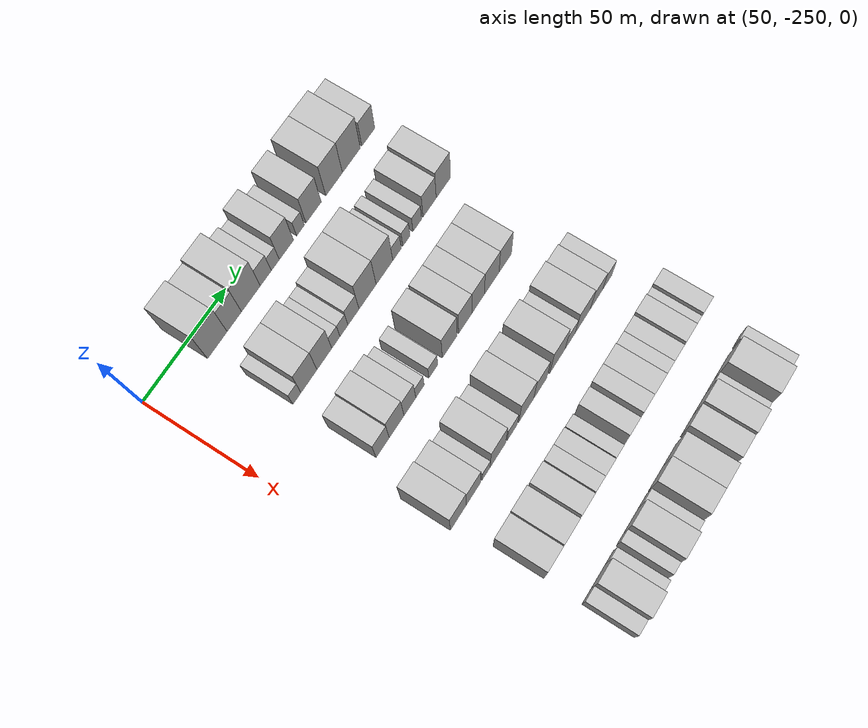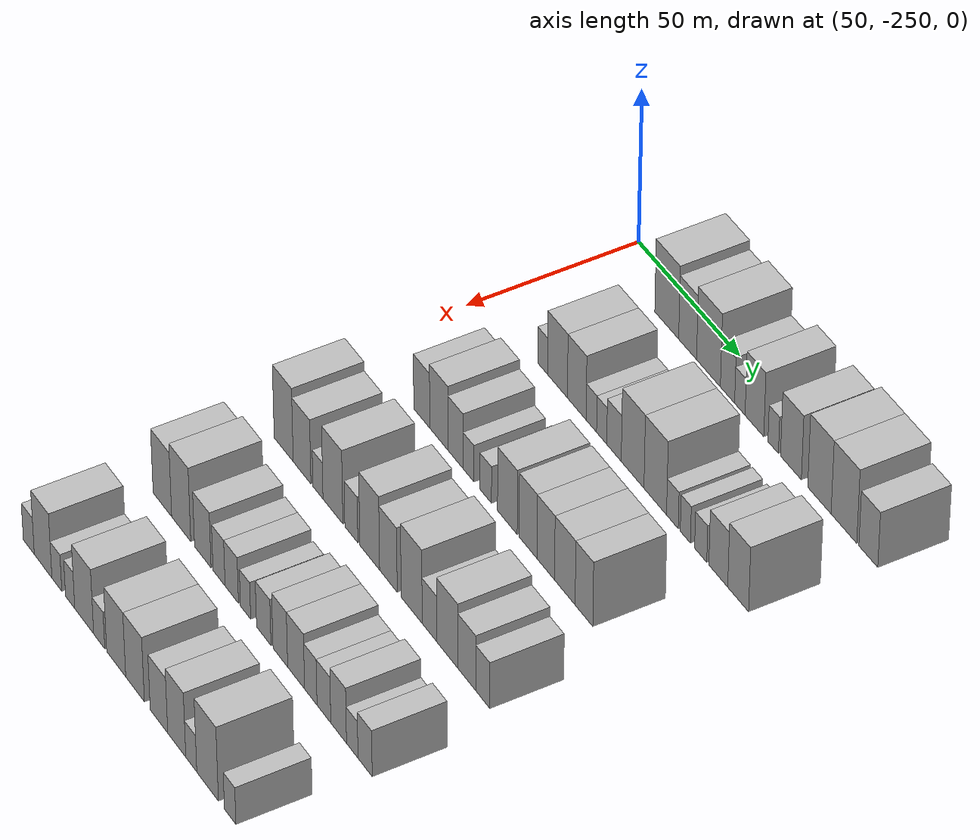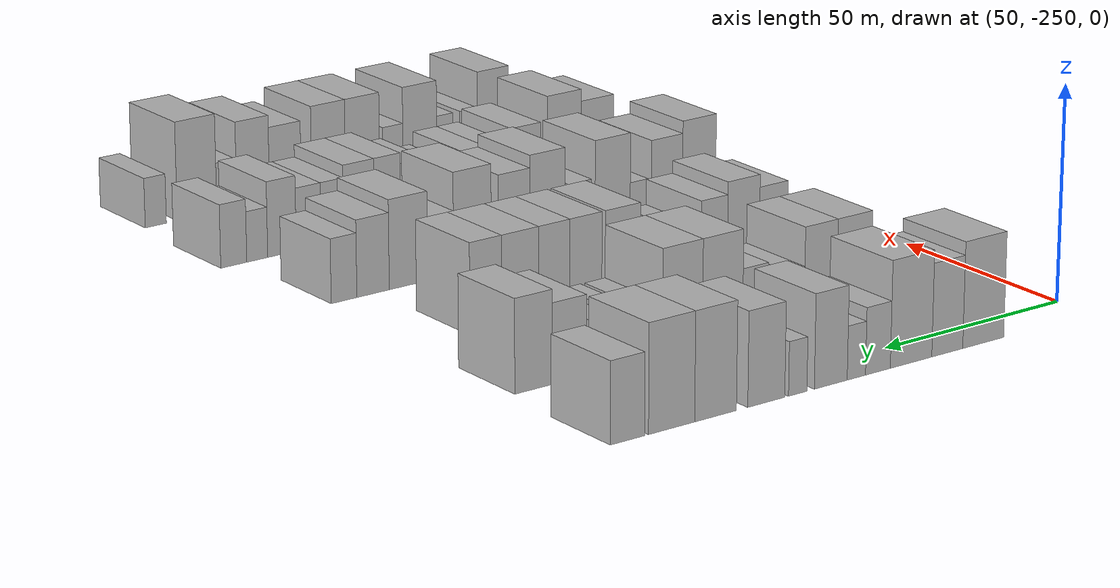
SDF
<sdf version="1.6">
 <world name="default">
  <model name="building_41">
   <static>1</static>
   <pose>50.0000 -219.0202 0 0.000000 0.000000 0.000000</pose>
   <link name="link">
    <pose>0 0 12.00 0 0 0</pose>
    <collision name="collision"><geometry><box><size>20.0000 11.8010 24.0000</size></box></geometry></collision>
    <visual name="visual">
     <cast_shadows>0</cast_shadows>
     <geometry><box><size>20.0000 11.8010 24.0000</size></box></geometry>
     <material>
      <script>
       <uri>model://HANNAS_wall/materials/scripts</uri>
       <uri>model://HANNAS_wall/materials/textures</uri>
       <name>vrc/HANNAS_wall</name>
      </script>
     </material>
    </visual>
   </link>
  </model>
  <model name="building_42">
   <static>1</static>
   <pose>50.0000 -208.7219 0 0.000000 0.000000 0.000000</pose>
   <link name="link">
    <pose>0 0 10.50 0 0 0</pose>
    <collision name="collision"><geometry><box><size>20.0000 8.7955 21.0000</size></box></geometry></collision>
    <visual name="visual">
     <cast_shadows>0</cast_shadows>
     <geometry><box><size>20.0000 8.7955 21.0000</size></box></geometry>
     <material>
      <script>
       <uri>model://HANNAS_wall/materials/scripts</uri>
       <uri>model://HANNAS_wall/materials/textures</uri>
       <name>vrc/HANNAS_wall</name>
      </script>
     </material>
    </visual>
   </link>
  </model>
  <model name="building_43">
   <static>1</static>
   <pose>50.0000 -198.5086 0 0.000000 0.000000 0.000000</pose>
   <link name="link">
    <pose>0 0 12.00 0 0 0</pose>
    <collision name="collision"><geometry><box><size>20.0000 11.6310 24.0000</size></box></geometry></collision>
    <visual name="visual">
     <cast_shadows>0</cast_shadows>
     <geometry><box><size>20.0000 11.6310 24.0000</size></box></geometry>
     <material>
      <script>
       <uri>model://HANNAS_wall/materials/scripts</uri>
       <uri>model://HANNAS_wall/materials/textures</uri>
       <name>vrc/HANNAS_wall</name>
      </script>
     </material>
    </visual>
   </link>
  </model>
  <model name="building_44">
   <static>1</static>
   <pose>50.0000 -189.2512 0 0.000000 0.000000 0.000000</pose>
   <link name="link">
    <pose>0 0 7.50 0 0 0</pose>
    <collision name="collision"><geometry><box><size>20.0000 6.8839 15.0000</size></box></geometry></collision>
    <visual name="visual">
     <cast_shadows>0</cast_shadows>
     <geometry><box><size>20.0000 6.8839 15.0000</size></box></geometry>
     <material>
      <script>
       <uri>model://HANNAS_wall/materials/scripts</uri>
       <uri>model://HANNAS_wall/materials/textures</uri>
       <name>vrc/HANNAS_wall</name>
      </script>
     </material>
    </visual>
   </link>
  </model>
  <model name="building_45">
   <static>1</static>
   <pose>50.0000 -183.2836 0 0.000000 0.000000 0.000000</pose>
   <link name="link">
    <pose>0 0 6.00 0 0 0</pose>
    <collision name="collision"><geometry><box><size>20.0000 5.0514 12.0000</size></box></geometry></collision>
    <visual name="visual">
     <cast_shadows>0</cast_shadows>
     <geometry><box><size>20.0000 5.0514 12.0000</size></box></geometry>
     <material>
      <script>
       <uri>model://HANNAS_wall/materials/scripts</uri>
       <uri>model://HANNAS_wall/materials/textures</uri>
       <name>vrc/HANNAS_wall</name>
      </script>
     </material>
    </visual>
   </link>
  </model>
  <model name="building_46">
   <static>1</static>
   <pose>50.0000 -176.2720 0 0.000000 0.000000 0.000000</pose>
   <link name="link">
    <pose>0 0 10.50 0 0 0</pose>
    <collision name="collision"><geometry><box><size>20.0000 8.9718 21.0000</size></box></geometry></collision>
    <visual name="visual">
     <cast_shadows>0</cast_shadows>
     <geometry><box><size>20.0000 8.9718 21.0000</size></box></geometry>
     <material>
      <script>
       <uri>model://HANNAS_wall/materials/scripts</uri>
       <uri>model://HANNAS_wall/materials/textures</uri>
       <name>vrc/HANNAS_wall</name>
      </script>
     </material>
    </visual>
   </link>
  </model>
  <model name="building_47">
   <static>1</static>
   <pose>50.0000 -167.2965 0 0.000000 0.000000 0.000000</pose>
   <link name="link">
    <pose>0 0 6.00 0 0 0</pose>
    <collision name="collision"><geometry><box><size>20.0000 4.9792 12.0000</size></box></geometry></collision>
    <visual name="visual">
     <cast_shadows>0</cast_shadows>
     <geometry><box><size>20.0000 4.9792 12.0000</size></box></geometry>
     <material>
      <script>
       <uri>model://HANNAS_wall/materials/scripts</uri>
       <uri>model://HANNAS_wall/materials/textures</uri>
       <name>vrc/HANNAS_wall</name>
      </script>
     </material>
    </visual>
   </link>
  </model>
  <model name="building_48">
   <static>1</static>
   <pose>50.0000 -158.8689 0 0.000000 0.000000 0.000000</pose>
   <link name="link">
    <pose>0 0 10.50 0 0 0</pose>
    <collision name="collision"><geometry><box><size>20.0000 9.8760 21.0000</size></box></geometry></collision>
    <visual name="visual">
     <cast_shadows>0</cast_shadows>
     <geometry><box><size>20.0000 9.8760 21.0000</size></box></geometry>
     <material>
      <script>
       <uri>model://HANNAS_wall/materials/scripts</uri>
       <uri>model://HANNAS_wall/materials/textures</uri>
       <name>vrc/HANNAS_wall</name>
      </script>
     </material>
    </visual>
   </link>
  </model>
  <model name="building_49">
   <static>1</static>
   <pose>50.0000 -145.4547 0 0.000000 0.000000 0.000000</pose>
   <link name="link">
    <pose>0 0 12.00 0 0 0</pose>
    <collision name="collision"><geometry><box><size>20.0000 10.9523 24.0000</size></box></geometry></collision>
    <visual name="visual">
     <cast_shadows>0</cast_shadows>
     <geometry><box><size>20.0000 10.9523 24.0000</size></box></geometry>
     <material>
      <script>
       <uri>model://HANNAS_wall/materials/scripts</uri>
       <uri>model://HANNAS_wall/materials/textures</uri>
       <name>vrc/HANNAS_wall</name>
      </script>
     </material>
    </visual>
   </link>
  </model>
  <model name="building_50">
   <static>1</static>
   <pose>50.0000 -134.0115 0 0.000000 0.000000 0.000000</pose>
   <link name="link">
    <pose>0 0 12.00 0 0 0</pose>
    <collision name="collision"><geometry><box><size>20.0000 11.9341 24.0000</size></box></geometry></collision>
    <visual name="visual">
     <cast_shadows>0</cast_shadows>
     <geometry><box><size>20.0000 11.9341 24.0000</size></box></geometry>
     <material>
      <script>
       <uri>model://HANNAS_wall/materials/scripts</uri>
       <uri>model://HANNAS_wall/materials/textures</uri>
       <name>vrc/HANNAS_wall</name>
      </script>
     </material>
    </visual>
   </link>
  </model>
  <model name="building_51">
   <static>1</static>
   <pose>50.0000 -122.6873 0 0.000000 0.000000 0.000000</pose>
   <link name="link">
    <pose>0 0 9.00 0 0 0</pose>
    <collision name="collision"><geometry><box><size>20.0000 8.7145 18.0000</size></box></geometry></collision>
    <visual name="visual">
     <cast_shadows>0</cast_shadows>
     <geometry><box><size>20.0000 8.7145 18.0000</size></box></geometry>
     <material>
      <script>
       <uri>model://HANNAS_wall/materials/scripts</uri>
       <uri>model://HANNAS_wall/materials/textures</uri>
       <name>vrc/HANNAS_wall</name>
      </script>
     </material>
    </visual>
   </link>
  </model>
  <model name="building_169">
   <static>1</static>
   <pose>85.0000 -219.9961 0 0.000000 0.000000 0.000000</pose>
   <link name="link">
    <pose>0 0 6.00 0 0 0</pose>
    <collision name="collision"><geometry><box><size>20.0000 4.9294 12.0000</size></box></geometry></collision>
    <visual name="visual">
     <cast_shadows>0</cast_shadows>
     <geometry><box><size>20.0000 4.9294 12.0000</size></box></geometry>
     <material>
      <script>
       <uri>model://HANNAS_wall/materials/scripts</uri>
       <uri>model://HANNAS_wall/materials/textures</uri>
       <name>vrc/HANNAS_wall</name>
      </script>
     </material>
    </visual>
   </link>
  </model>
  <model name="building_170">
   <static>1</static>
   <pose>85.0000 -212.5803 0 0.000000 0.000000 0.000000</pose>
   <link name="link">
    <pose>0 0 10.50 0 0 0</pose>
    <collision name="collision"><geometry><box><size>20.0000 9.9023 21.0000</size></box></geometry></collision>
    <visual name="visual">
     <cast_shadows>0</cast_shadows>
     <geometry><box><size>20.0000 9.9023 21.0000</size></box></geometry>
     <material>
      <script>
       <uri>model://HANNAS_wall/materials/scripts</uri>
       <uri>model://HANNAS_wall/materials/textures</uri>
       <name>vrc/HANNAS_wall</name>
      </script>
     </material>
    </visual>
   </link>
  </model>
  <model name="building_171">
   <static>1</static>
   <pose>85.0000 -202.9934 0 0.000000 0.000000 0.000000</pose>
   <link name="link">
    <pose>0 0 10.50 0 0 0</pose>
    <collision name="collision"><geometry><box><size>20.0000 9.2715 21.0000</size></box></geometry></collision>
    <visual name="visual">
     <cast_shadows>0</cast_shadows>
     <geometry><box><size>20.0000 9.2715 21.0000</size></box></geometry>
     <material>
      <script>
       <uri>model://HANNAS_wall/materials/scripts</uri>
       <uri>model://HANNAS_wall/materials/textures</uri>
       <name>vrc/HANNAS_wall</name>
      </script>
     </material>
    </visual>
   </link>
  </model>
  <model name="building_172">
   <static>1</static>
   <pose>85.0000 -195.7732 0 0.000000 0.000000 0.000000</pose>
   <link name="link">
    <pose>0 0 6.00 0 0 0</pose>
    <collision name="collision"><geometry><box><size>20.0000 5.1690 12.0000</size></box></geometry></collision>
    <visual name="visual">
     <cast_shadows>0</cast_shadows>
     <geometry><box><size>20.0000 5.1690 12.0000</size></box></geometry>
     <material>
      <script>
       <uri>model://HANNAS_wall/materials/scripts</uri>
       <uri>model://HANNAS_wall/materials/textures</uri>
       <name>vrc/HANNAS_wall</name>
      </script>
     </material>
    </visual>
   </link>
  </model>
  <model name="building_173">
   <static>1</static>
   <pose>85.0000 -190.6806 0 0.000000 0.000000 0.000000</pose>
   <link name="link">
    <pose>0 0 6.00 0 0 0</pose>
    <collision name="collision"><geometry><box><size>20.0000 5.0160 12.0000</size></box></geometry></collision>
    <visual name="visual">
     <cast_shadows>0</cast_shadows>
     <geometry><box><size>20.0000 5.0160 12.0000</size></box></geometry>
     <material>
      <script>
       <uri>model://HANNAS_wall/materials/scripts</uri>
       <uri>model://HANNAS_wall/materials/textures</uri>
       <name>vrc/HANNAS_wall</name>
      </script>
     </material>
    </visual>
   </link>
  </model>
  <model name="building_174">
   <static>1</static>
   <pose>85.0000 -184.6226 0 0.000000 0.000000 0.000000</pose>
   <link name="link">
    <pose>0 0 7.50 0 0 0</pose>
    <collision name="collision"><geometry><box><size>20.0000 7.1000 15.0000</size></box></geometry></collision>
    <visual name="visual">
     <cast_shadows>0</cast_shadows>
     <geometry><box><size>20.0000 7.1000 15.0000</size></box></geometry>
     <material>
      <script>
       <uri>model://HANNAS_wall/materials/scripts</uri>
       <uri>model://HANNAS_wall/materials/textures</uri>
       <name>vrc/HANNAS_wall</name>
      </script>
     </material>
    </visual>
   </link>
  </model>
  <model name="building_175">
   <static>1</static>
   <pose>85.0000 -175.5420 0 0.000000 0.000000 0.000000</pose>
   <link name="link">
    <pose>0 0 12.00 0 0 0</pose>
    <collision name="collision"><geometry><box><size>20.0000 11.0612 24.0000</size></box></geometry></collision>
    <visual name="visual">
     <cast_shadows>0</cast_shadows>
     <geometry><box><size>20.0000 11.0612 24.0000</size></box></geometry>
     <material>
      <script>
       <uri>model://HANNAS_wall/materials/scripts</uri>
       <uri>model://HANNAS_wall/materials/textures</uri>
       <name>vrc/HANNAS_wall</name>
      </script>
     </material>
    </visual>
   </link>
  </model>
  <model name="building_176">
   <static>1</static>
   <pose>85.0000 -164.5656 0 0.000000 0.000000 0.000000</pose>
   <link name="link">
    <pose>0 0 12.00 0 0 0</pose>
    <collision name="collision"><geometry><box><size>20.0000 10.8916 24.0000</size></box></geometry></collision>
    <visual name="visual">
     <cast_shadows>0</cast_shadows>
     <geometry><box><size>20.0000 10.8916 24.0000</size></box></geometry>
     <material>
      <script>
       <uri>model://HANNAS_wall/materials/scripts</uri>
       <uri>model://HANNAS_wall/materials/textures</uri>
       <name>vrc/HANNAS_wall</name>
      </script>
     </material>
    </visual>
   </link>
  </model>
  <model name="building_177">
   <static>1</static>
   <pose>85.0000 -156.3131 0 0.000000 0.000000 0.000000</pose>
   <link name="link">
    <pose>0 0 6.00 0 0 0</pose>
    <collision name="collision"><geometry><box><size>20.0000 5.6133 12.0000</size></box></geometry></collision>
    <visual name="visual">
     <cast_shadows>0</cast_shadows>
     <geometry><box><size>20.0000 5.6133 12.0000</size></box></geometry>
     <material>
      <script>
       <uri>model://HANNAS_wall/materials/scripts</uri>
       <uri>model://HANNAS_wall/materials/textures</uri>
       <name>vrc/HANNAS_wall</name>
      </script>
     </material>
    </visual>
   </link>
  </model>
  <model name="building_178">
   <static>1</static>
   <pose>85.0000 -150.0978 0 0.000000 0.000000 0.000000</pose>
   <link name="link">
    <pose>0 0 6.00 0 0 0</pose>
    <collision name="collision"><geometry><box><size>20.0000 4.8173 12.0000</size></box></geometry></collision>
    <visual name="visual">
     <cast_shadows>0</cast_shadows>
     <geometry><box><size>20.0000 4.8173 12.0000</size></box></geometry>
     <material>
      <script>
       <uri>model://HANNAS_wall/materials/scripts</uri>
       <uri>model://HANNAS_wall/materials/textures</uri>
       <name>vrc/HANNAS_wall</name>
      </script>
     </material>
    </visual>
   </link>
  </model>
  <model name="building_179">
   <static>1</static>
   <pose>85.0000 -142.8063 0 0.000000 0.000000 0.000000</pose>
   <link name="link">
    <pose>0 0 6.00 0 0 0</pose>
    <collision name="collision"><geometry><box><size>20.0000 5.7657 12.0000</size></box></geometry></collision>
    <visual name="visual">
     <cast_shadows>0</cast_shadows>
     <geometry><box><size>20.0000 5.7657 12.0000</size></box></geometry>
     <material>
      <script>
       <uri>model://HANNAS_wall/materials/scripts</uri>
       <uri>model://HANNAS_wall/materials/textures</uri>
       <name>vrc/HANNAS_wall</name>
      </script>
     </material>
    </visual>
   </link>
  </model>
  <model name="building_180">
   <static>1</static>
   <pose>85.0000 -134.4712 0 0.000000 0.000000 0.000000</pose>
   <link name="link">
    <pose>0 0 9.00 0 0 0</pose>
    <collision name="collision"><geometry><box><size>20.0000 8.9044 18.0000</size></box></geometry></collision>
    <visual name="visual">
     <cast_shadows>0</cast_shadows>
     <geometry><box><size>20.0000 8.9044 18.0000</size></box></geometry>
     <material>
      <script>
       <uri>model://HANNAS_wall/materials/scripts</uri>
       <uri>model://HANNAS_wall/materials/textures</uri>
       <name>vrc/HANNAS_wall</name>
      </script>
     </material>
    </visual>
   </link>
  </model>
  <model name="building_181">
   <static>1</static>
   <pose>85.0000 -125.1379 0 0.000000 0.000000 0.000000</pose>
   <link name="link">
    <pose>0 0 10.50 0 0 0</pose>
    <collision name="collision"><geometry><box><size>20.0000 9.7623 21.0000</size></box></geometry></collision>
    <visual name="visual">
     <cast_shadows>0</cast_shadows>
     <geometry><box><size>20.0000 9.7623 21.0000</size></box></geometry>
     <material>
      <script>
       <uri>model://HANNAS_wall/materials/scripts</uri>
       <uri>model://HANNAS_wall/materials/textures</uri>
       <name>vrc/HANNAS_wall</name>
      </script>
     </material>
    </visual>
   </link>
  </model>
  <model name="building_277">
   <static>1</static>
   <pose>120.0000 -218.5419 0 0.000000 0.000000 0.000000</pose>
   <link name="link">
    <pose>0 0 9.00 0 0 0</pose>
    <collision name="collision"><geometry><box><size>20.0000 8.1634 18.0000</size></box></geometry></collision>
    <visual name="visual">
     <cast_shadows>0</cast_shadows>
     <geometry><box><size>20.0000 8.1634 18.0000</size></box></geometry>
     <material>
      <script>
       <uri>model://HANNAS_wall/materials/scripts</uri>
       <uri>model://HANNAS_wall/materials/textures</uri>
       <name>vrc/HANNAS_wall</name>
      </script>
     </material>
    </visual>
   </link>
  </model>
  <model name="building_278">
   <static>1</static>
   <pose>120.0000 -209.8249 0 0.000000 0.000000 0.000000</pose>
   <link name="link">
    <pose>0 0 10.50 0 0 0</pose>
    <collision name="collision"><geometry><box><size>20.0000 9.2706 21.0000</size></box></geometry></collision>
    <visual name="visual">
     <cast_shadows>0</cast_shadows>
     <geometry><box><size>20.0000 9.2706 21.0000</size></box></geometry>
     <material>
      <script>
       <uri>model://HANNAS_wall/materials/scripts</uri>
       <uri>model://HANNAS_wall/materials/textures</uri>
       <name>vrc/HANNAS_wall</name>
      </script>
     </material>
    </visual>
   </link>
  </model>
  <model name="building_279">
   <static>1</static>
   <pose>120.0000 -201.4038 0 0.000000 0.000000 0.000000</pose>
   <link name="link">
    <pose>0 0 9.00 0 0 0</pose>
    <collision name="collision"><geometry><box><size>20.0000 7.5715 18.0000</size></box></geometry></collision>
    <visual name="visual">
     <cast_shadows>0</cast_shadows>
     <geometry><box><size>20.0000 7.5715 18.0000</size></box></geometry>
     <material>
      <script>
       <uri>model://HANNAS_wall/materials/scripts</uri>
       <uri>model://HANNAS_wall/materials/textures</uri>
       <name>vrc/HANNAS_wall</name>
      </script>
     </material>
    </visual>
   </link>
  </model>
  <model name="building_280">
   <static>1</static>
   <pose>120.0000 -194.9046 0 0.000000 0.000000 0.000000</pose>
   <link name="link">
    <pose>0 0 6.00 0 0 0</pose>
    <collision name="collision"><geometry><box><size>20.0000 5.4269 12.0000</size></box></geometry></collision>
    <visual name="visual">
     <cast_shadows>0</cast_shadows>
     <geometry><box><size>20.0000 5.4269 12.0000</size></box></geometry>
     <material>
      <script>
       <uri>model://HANNAS_wall/materials/scripts</uri>
       <uri>model://HANNAS_wall/materials/textures</uri>
       <name>vrc/HANNAS_wall</name>
      </script>
     </material>
    </visual>
   </link>
  </model>
  <model name="building_281">
   <static>1</static>
   <pose>120.0000 -186.3194 0 0.000000 0.000000 0.000000</pose>
   <link name="link">
    <pose>0 0 6.00 0 0 0</pose>
    <collision name="collision"><geometry><box><size>20.0000 5.7435 12.0000</size></box></geometry></collision>
    <visual name="visual">
     <cast_shadows>0</cast_shadows>
     <geometry><box><size>20.0000 5.7435 12.0000</size></box></geometry>
     <material>
      <script>
       <uri>model://HANNAS_wall/materials/scripts</uri>
       <uri>model://HANNAS_wall/materials/textures</uri>
       <name>vrc/HANNAS_wall</name>
      </script>
     </material>
    </visual>
   </link>
  </model>
  <model name="building_282">
   <static>1</static>
   <pose>120.0000 -175.5884 0 0.000000 0.000000 0.000000</pose>
   <link name="link">
    <pose>0 0 10.50 0 0 0</pose>
    <collision name="collision"><geometry><box><size>20.0000 9.7186 21.0000</size></box></geometry></collision>
    <visual name="visual">
     <cast_shadows>0</cast_shadows>
     <geometry><box><size>20.0000 9.7186 21.0000</size></box></geometry>
     <material>
      <script>
       <uri>model://HANNAS_wall/materials/scripts</uri>
       <uri>model://HANNAS_wall/materials/textures</uri>
       <name>vrc/HANNAS_wall</name>
      </script>
     </material>
    </visual>
   </link>
  </model>
  <model name="building_283">
   <static>1</static>
   <pose>120.0000 -165.3524 0 0.000000 0.000000 0.000000</pose>
   <link name="link">
    <pose>0 0 10.50 0 0 0</pose>
    <collision name="collision"><geometry><box><size>20.0000 8.7532 21.0000</size></box></geometry></collision>
    <visual name="visual">
     <cast_shadows>0</cast_shadows>
     <geometry><box><size>20.0000 8.7532 21.0000</size></box></geometry>
     <material>
      <script>
       <uri>model://HANNAS_wall/materials/scripts</uri>
       <uri>model://HANNAS_wall/materials/textures</uri>
       <name>vrc/HANNAS_wall</name>
      </script>
     </material>
    </visual>
   </link>
  </model>
  <model name="building_284">
   <static>1</static>
   <pose>120.0000 -156.7097 0 0.000000 0.000000 0.000000</pose>
   <link name="link">
    <pose>0 0 10.50 0 0 0</pose>
    <collision name="collision"><geometry><box><size>20.0000 8.5322 21.0000</size></box></geometry></collision>
    <visual name="visual">
     <cast_shadows>0</cast_shadows>
     <geometry><box><size>20.0000 8.5322 21.0000</size></box></geometry>
     <material>
      <script>
       <uri>model://HANNAS_wall/materials/scripts</uri>
       <uri>model://HANNAS_wall/materials/textures</uri>
       <name>vrc/HANNAS_wall</name>
      </script>
     </material>
    </visual>
   </link>
  </model>
  <model name="building_285">
   <static>1</static>
   <pose>120.0000 -147.4664 0 0.000000 0.000000 0.000000</pose>
   <link name="link">
    <pose>0 0 10.50 0 0 0</pose>
    <collision name="collision"><geometry><box><size>20.0000 9.9545 21.0000</size></box></geometry></collision>
    <visual name="visual">
     <cast_shadows>0</cast_shadows>
     <geometry><box><size>20.0000 9.9545 21.0000</size></box></geometry>
     <material>
      <script>
       <uri>model://HANNAS_wall/materials/scripts</uri>
       <uri>model://HANNAS_wall/materials/textures</uri>
       <name>vrc/HANNAS_wall</name>
      </script>
     </material>
    </visual>
   </link>
  </model>
  <model name="building_286">
   <static>1</static>
   <pose>120.0000 -138.2405 0 0.000000 0.000000 0.000000</pose>
   <link name="link">
    <pose>0 0 10.50 0 0 0</pose>
    <collision name="collision"><geometry><box><size>20.0000 8.4972 21.0000</size></box></geometry></collision>
    <visual name="visual">
     <cast_shadows>0</cast_shadows>
     <geometry><box><size>20.0000 8.4972 21.0000</size></box></geometry>
     <material>
      <script>
       <uri>model://HANNAS_wall/materials/scripts</uri>
       <uri>model://HANNAS_wall/materials/textures</uri>
       <name>vrc/HANNAS_wall</name>
      </script>
     </material>
    </visual>
   </link>
  </model>
  <model name="building_398">
   <static>1</static>
   <pose>155.0000 -225.0472 0 0.000000 0.000000 0.000000</pose>
   <link name="link">
    <pose>0 0 12.00 0 0 0</pose>
    <collision name="collision"><geometry><box><size>20.0000 9.9045 24.0000</size></box></geometry></collision>
    <visual name="visual">
     <cast_shadows>0</cast_shadows>
     <geometry><box><size>20.0000 9.9045 24.0000</size></box></geometry>
     <material>
      <script>
       <uri>model://HANNAS_wall/materials/scripts</uri>
       <uri>model://HANNAS_wall/materials/textures</uri>
       <name>vrc/HANNAS_wall</name>
      </script>
     </material>
    </visual>
   </link>
  </model>
  <model name="building_399">
   <static>1</static>
   <pose>155.0000 -215.5094 0 0.000000 0.000000 0.000000</pose>
   <link name="link">
    <pose>0 0 10.50 0 0 0</pose>
    <collision name="collision"><geometry><box><size>20.0000 9.1712 21.0000</size></box></geometry></collision>
    <visual name="visual">
     <cast_shadows>0</cast_shadows>
     <geometry><box><size>20.0000 9.1712 21.0000</size></box></geometry>
     <material>
      <script>
       <uri>model://HANNAS_wall/materials/scripts</uri>
       <uri>model://HANNAS_wall/materials/textures</uri>
       <name>vrc/HANNAS_wall</name>
      </script>
     </material>
    </visual>
   </link>
  </model>
  <model name="building_400">
   <static>1</static>
   <pose>155.0000 -207.3241 0 0.000000 0.000000 0.000000</pose>
   <link name="link">
    <pose>0 0 6.00 0 0 0</pose>
    <collision name="collision"><geometry><box><size>20.0000 5.1995 12.0000</size></box></geometry></collision>
    <visual name="visual">
     <cast_shadows>0</cast_shadows>
     <geometry><box><size>20.0000 5.1995 12.0000</size></box></geometry>
     <material>
      <script>
       <uri>model://HANNAS_wall/materials/scripts</uri>
       <uri>model://HANNAS_wall/materials/textures</uri>
       <name>vrc/HANNAS_wall</name>
      </script>
     </material>
    </visual>
   </link>
  </model>
  <model name="building_401">
   <static>1</static>
   <pose>155.0000 -199.6340 0 0.000000 0.000000 0.000000</pose>
   <link name="link">
    <pose>0 0 12.00 0 0 0</pose>
    <collision name="collision"><geometry><box><size>20.0000 10.1807 24.0000</size></box></geometry></collision>
    <visual name="visual">
     <cast_shadows>0</cast_shadows>
     <geometry><box><size>20.0000 10.1807 24.0000</size></box></geometry>
     <material>
      <script>
       <uri>model://HANNAS_wall/materials/scripts</uri>
       <uri>model://HANNAS_wall/materials/textures</uri>
       <name>vrc/HANNAS_wall</name>
      </script>
     </material>
    </visual>
   </link>
  </model>
  <model name="building_402">
   <static>1</static>
   <pose>155.0000 -190.2366 0 0.000000 0.000000 0.000000</pose>
   <link name="link">
    <pose>0 0 7.50 0 0 0</pose>
    <collision name="collision"><geometry><box><size>20.0000 6.6140 15.0000</size></box></geometry></collision>
    <visual name="visual">
     <cast_shadows>0</cast_shadows>
     <geometry><box><size>20.0000 6.6140 15.0000</size></box></geometry>
     <material>
      <script>
       <uri>model://HANNAS_wall/materials/scripts</uri>
       <uri>model://HANNAS_wall/materials/textures</uri>
       <name>vrc/HANNAS_wall</name>
      </script>
     </material>
    </visual>
   </link>
  </model>
  <model name="building_403">
   <static>1</static>
   <pose>155.0000 -180.9460 0 0.000000 0.000000 0.000000</pose>
   <link name="link">
    <pose>0 0 12.00 0 0 0</pose>
    <collision name="collision"><geometry><box><size>20.0000 9.9672 24.0000</size></box></geometry></collision>
    <visual name="visual">
     <cast_shadows>0</cast_shadows>
     <geometry><box><size>20.0000 9.9672 24.0000</size></box></geometry>
     <material>
      <script>
       <uri>model://HANNAS_wall/materials/scripts</uri>
       <uri>model://HANNAS_wall/materials/textures</uri>
       <name>vrc/HANNAS_wall</name>
      </script>
     </material>
    </visual>
   </link>
  </model>
  <model name="building_404">
   <static>1</static>
   <pose>155.0000 -171.5565 0 0.000000 0.000000 0.000000</pose>
   <link name="link">
    <pose>0 0 10.50 0 0 0</pose>
    <collision name="collision"><geometry><box><size>20.0000 8.8118 21.0000</size></box></geometry></collision>
    <visual name="visual">
     <cast_shadows>0</cast_shadows>
     <geometry><box><size>20.0000 8.8118 21.0000</size></box></geometry>
     <material>
      <script>
       <uri>model://HANNAS_wall/materials/scripts</uri>
       <uri>model://HANNAS_wall/materials/textures</uri>
       <name>vrc/HANNAS_wall</name>
      </script>
     </material>
    </visual>
   </link>
  </model>
  <model name="building_405">
   <static>1</static>
   <pose>155.0000 -159.9297 0 0.000000 0.000000 0.000000</pose>
   <link name="link">
    <pose>0 0 12.00 0 0 0</pose>
    <collision name="collision"><geometry><box><size>20.0000 10.4418 24.0000</size></box></geometry></collision>
    <visual name="visual">
     <cast_shadows>0</cast_shadows>
     <geometry><box><size>20.0000 10.4418 24.0000</size></box></geometry>
     <material>
      <script>
       <uri>model://HANNAS_wall/materials/scripts</uri>
       <uri>model://HANNAS_wall/materials/textures</uri>
       <name>vrc/HANNAS_wall</name>
      </script>
     </material>
    </visual>
   </link>
  </model>
  <model name="building_406">
   <static>1</static>
   <pose>155.0000 -151.1366 0 0.000000 0.000000 0.000000</pose>
   <link name="link">
    <pose>0 0 7.50 0 0 0</pose>
    <collision name="collision"><geometry><box><size>20.0000 7.1444 15.0000</size></box></geometry></collision>
    <visual name="visual">
     <cast_shadows>0</cast_shadows>
     <geometry><box><size>20.0000 7.1444 15.0000</size></box></geometry>
     <material>
      <script>
       <uri>model://HANNAS_wall/materials/scripts</uri>
       <uri>model://HANNAS_wall/materials/textures</uri>
       <name>vrc/HANNAS_wall</name>
      </script>
     </material>
    </visual>
   </link>
  </model>
  <model name="building_407">
   <static>1</static>
   <pose>155.0000 -142.3623 0 0.000000 0.000000 0.000000</pose>
   <link name="link">
    <pose>0 0 10.50 0 0 0</pose>
    <collision name="collision"><geometry><box><size>20.0000 10.4043 21.0000</size></box></geometry></collision>
    <visual name="visual">
     <cast_shadows>0</cast_shadows>
     <geometry><box><size>20.0000 10.4043 21.0000</size></box></geometry>
     <material>
      <script>
       <uri>model://HANNAS_wall/materials/scripts</uri>
       <uri>model://HANNAS_wall/materials/textures</uri>
       <name>vrc/HANNAS_wall</name>
      </script>
     </material>
    </visual>
   </link>
  </model>
  <model name="building_408">
   <static>1</static>
   <pose>155.0000 -132.8118 0 0.000000 0.000000 0.000000</pose>
   <link name="link">
    <pose>0 0 9.00 0 0 0</pose>
    <collision name="collision"><geometry><box><size>20.0000 8.6968 18.0000</size></box></geometry></collision>
    <visual name="visual">
     <cast_shadows>0</cast_shadows>
     <geometry><box><size>20.0000 8.6968 18.0000</size></box></geometry>
     <material>
      <script>
       <uri>model://HANNAS_wall/materials/scripts</uri>
       <uri>model://HANNAS_wall/materials/textures</uri>
       <name>vrc/HANNAS_wall</name>
      </script>
     </material>
    </visual>
   </link>
  </model>
  <model name="building_409">
   <static>1</static>
   <pose>155.0000 -125.0507 0 0.000000 0.000000 0.000000</pose>
   <link name="link">
    <pose>0 0 7.50 0 0 0</pose>
    <collision name="collision"><geometry><box><size>20.0000 6.8254 15.0000</size></box></geometry></collision>
    <visual name="visual">
     <cast_shadows>0</cast_shadows>
     <geometry><box><size>20.0000 6.8254 15.0000</size></box></geometry>
     <material>
      <script>
       <uri>model://HANNAS_wall/materials/scripts</uri>
       <uri>model://HANNAS_wall/materials/textures</uri>
       <name>vrc/HANNAS_wall</name>
      </script>
     </material>
    </visual>
   </link>
  </model>
  <model name="building_524">
   <static>1</static>
   <pose>190.0000 -221.9194 0 0.000000 0.000000 0.000000</pose>
   <link name="link">
    <pose>0 0 10.50 0 0 0</pose>
    <collision name="collision"><geometry><box><size>20.0000 9.7937 21.0000</size></box></geometry></collision>
    <visual name="visual">
     <cast_shadows>0</cast_shadows>
     <geometry><box><size>20.0000 9.7937 21.0000</size></box></geometry>
     <material>
      <script>
       <uri>model://HANNAS_wall/materials/scripts</uri>
       <uri>model://HANNAS_wall/materials/textures</uri>
       <name>vrc/HANNAS_wall</name>
      </script>
     </material>
    </visual>
   </link>
  </model>
  <model name="building_525">
   <static>1</static>
   <pose>190.0000 -212.0150 0 0.000000 0.000000 0.000000</pose>
   <link name="link">
    <pose>0 0 12.00 0 0 0</pose>
    <collision name="collision"><geometry><box><size>20.0000 10.0151 24.0000</size></box></geometry></collision>
    <visual name="visual">
     <cast_shadows>0</cast_shadows>
     <geometry><box><size>20.0000 10.0151 24.0000</size></box></geometry>
     <material>
      <script>
       <uri>model://HANNAS_wall/materials/scripts</uri>
       <uri>model://HANNAS_wall/materials/textures</uri>
       <name>vrc/HANNAS_wall</name>
      </script>
     </material>
    </visual>
   </link>
  </model>
  <model name="building_526">
   <static>1</static>
   <pose>190.0000 -200.7093 0 0.000000 0.000000 0.000000</pose>
   <link name="link">
    <pose>0 0 9.00 0 0 0</pose>
    <collision name="collision"><geometry><box><size>20.0000 8.5962 18.0000</size></box></geometry></collision>
    <visual name="visual">
     <cast_shadows>0</cast_shadows>
     <geometry><box><size>20.0000 8.5962 18.0000</size></box></geometry>
     <material>
      <script>
       <uri>model://HANNAS_wall/materials/scripts</uri>
       <uri>model://HANNAS_wall/materials/textures</uri>
       <name>vrc/HANNAS_wall</name>
      </script>
     </material>
    </visual>
   </link>
  </model>
  <model name="building_527">
   <static>1</static>
   <pose>190.0000 -192.2796 0 0.000000 0.000000 0.000000</pose>
   <link name="link">
    <pose>0 0 7.50 0 0 0</pose>
    <collision name="collision"><geometry><box><size>20.0000 6.2633 15.0000</size></box></geometry></collision>
    <visual name="visual">
     <cast_shadows>0</cast_shadows>
     <geometry><box><size>20.0000 6.2633 15.0000</size></box></geometry>
     <material>
      <script>
       <uri>model://HANNAS_wall/materials/scripts</uri>
       <uri>model://HANNAS_wall/materials/textures</uri>
       <name>vrc/HANNAS_wall</name>
      </script>
     </material>
    </visual>
   </link>
  </model>
  <model name="building_528">
   <static>1</static>
   <pose>190.0000 -185.7003 0 0.000000 0.000000 0.000000</pose>
   <link name="link">
    <pose>0 0 7.50 0 0 0</pose>
    <collision name="collision"><geometry><box><size>20.0000 6.8952 15.0000</size></box></geometry></collision>
    <visual name="visual">
     <cast_shadows>0</cast_shadows>
     <geometry><box><size>20.0000 6.8952 15.0000</size></box></geometry>
     <material>
      <script>
       <uri>model://HANNAS_wall/materials/scripts</uri>
       <uri>model://HANNAS_wall/materials/textures</uri>
       <name>vrc/HANNAS_wall</name>
      </script>
     </material>
    </visual>
   </link>
  </model>
  <model name="building_529">
   <static>1</static>
   <pose>190.0000 -178.6321 0 0.000000 0.000000 0.000000</pose>
   <link name="link">
    <pose>0 0 6.00 0 0 0</pose>
    <collision name="collision"><geometry><box><size>20.0000 5.2411 12.0000</size></box></geometry></collision>
    <visual name="visual">
     <cast_shadows>0</cast_shadows>
     <geometry><box><size>20.0000 5.2411 12.0000</size></box></geometry>
     <material>
      <script>
       <uri>model://HANNAS_wall/materials/scripts</uri>
       <uri>model://HANNAS_wall/materials/textures</uri>
       <name>vrc/HANNAS_wall</name>
      </script>
     </material>
    </visual>
   </link>
  </model>
  <model name="building_530">
   <static>1</static>
   <pose>190.0000 -169.3241 0 0.000000 0.000000 0.000000</pose>
   <link name="link">
    <pose>0 0 7.50 0 0 0</pose>
    <collision name="collision"><geometry><box><size>20.0000 7.3748 15.0000</size></box></geometry></collision>
    <visual name="visual">
     <cast_shadows>0</cast_shadows>
     <geometry><box><size>20.0000 7.3748 15.0000</size></box></geometry>
     <material>
      <script>
       <uri>model://HANNAS_wall/materials/scripts</uri>
       <uri>model://HANNAS_wall/materials/textures</uri>
       <name>vrc/HANNAS_wall</name>
      </script>
     </material>
    </visual>
   </link>
  </model>
  <model name="building_531">
   <static>1</static>
   <pose>190.0000 -160.9315 0 0.000000 0.000000 0.000000</pose>
   <link name="link">
    <pose>0 0 9.00 0 0 0</pose>
    <collision name="collision"><geometry><box><size>20.0000 7.4105 18.0000</size></box></geometry></collision>
    <visual name="visual">
     <cast_shadows>0</cast_shadows>
     <geometry><box><size>20.0000 7.4105 18.0000</size></box></geometry>
     <material>
      <script>
       <uri>model://HANNAS_wall/materials/scripts</uri>
       <uri>model://HANNAS_wall/materials/textures</uri>
       <name>vrc/HANNAS_wall</name>
      </script>
     </material>
    </visual>
   </link>
  </model>
  <model name="building_532">
   <static>1</static>
   <pose>190.0000 -152.9652 0 0.000000 0.000000 0.000000</pose>
   <link name="link">
    <pose>0 0 9.00 0 0 0</pose>
    <collision name="collision"><geometry><box><size>20.0000 8.5220 18.0000</size></box></geometry></collision>
    <visual name="visual">
     <cast_shadows>0</cast_shadows>
     <geometry><box><size>20.0000 8.5220 18.0000</size></box></geometry>
     <material>
      <script>
       <uri>model://HANNAS_wall/materials/scripts</uri>
       <uri>model://HANNAS_wall/materials/textures</uri>
       <name>vrc/HANNAS_wall</name>
      </script>
     </material>
    </visual>
   </link>
  </model>
  <model name="building_533">
   <static>1</static>
   <pose>190.0000 -145.6056 0 0.000000 0.000000 0.000000</pose>
   <link name="link">
    <pose>0 0 7.50 0 0 0</pose>
    <collision name="collision"><geometry><box><size>20.0000 6.1972 15.0000</size></box></geometry></collision>
    <visual name="visual">
     <cast_shadows>0</cast_shadows>
     <geometry><box><size>20.0000 6.1972 15.0000</size></box></geometry>
     <material>
      <script>
       <uri>model://HANNAS_wall/materials/scripts</uri>
       <uri>model://HANNAS_wall/materials/textures</uri>
       <name>vrc/HANNAS_wall</name>
      </script>
     </material>
    </visual>
   </link>
  </model>
  <model name="building_534">
   <static>1</static>
   <pose>190.0000 -139.0862 0 0.000000 0.000000 0.000000</pose>
   <link name="link">
    <pose>0 0 7.50 0 0 0</pose>
    <collision name="collision"><geometry><box><size>20.0000 6.8418 15.0000</size></box></geometry></collision>
    <visual name="visual">
     <cast_shadows>0</cast_shadows>
     <geometry><box><size>20.0000 6.8418 15.0000</size></box></geometry>
     <material>
      <script>
       <uri>model://HANNAS_wall/materials/scripts</uri>
       <uri>model://HANNAS_wall/materials/textures</uri>
       <name>vrc/HANNAS_wall</name>
      </script>
     </material>
    </visual>
   </link>
  </model>
  <model name="building_535">
   <static>1</static>
   <pose>190.0000 -131.7824 0 0.000000 0.000000 0.000000</pose>
   <link name="link">
    <pose>0 0 9.00 0 0 0</pose>
    <collision name="collision"><geometry><box><size>20.0000 7.7657 18.0000</size></box></geometry></collision>
    <visual name="visual">
     <cast_shadows>0</cast_shadows>
     <geometry><box><size>20.0000 7.7657 18.0000</size></box></geometry>
     <material>
      <script>
       <uri>model://HANNAS_wall/materials/scripts</uri>
       <uri>model://HANNAS_wall/materials/textures</uri>
       <name>vrc/HANNAS_wall</name>
      </script>
     </material>
    </visual>
   </link>
  </model>
  <model name="building_536">
   <static>1</static>
   <pose>190.0000 -125.0750 0 0.000000 0.000000 0.000000</pose>
   <link name="link">
    <pose>0 0 6.00 0 0 0</pose>
    <collision name="collision"><geometry><box><size>20.0000 5.6491 12.0000</size></box></geometry></collision>
    <visual name="visual">
     <cast_shadows>0</cast_shadows>
     <geometry><box><size>20.0000 5.6491 12.0000</size></box></geometry>
     <material>
      <script>
       <uri>model://HANNAS_wall/materials/scripts</uri>
       <uri>model://HANNAS_wall/materials/textures</uri>
       <name>vrc/HANNAS_wall</name>
      </script>
     </material>
    </visual>
   </link>
  </model>
  <model name="building_537">
   <static>1</static>
   <pose>190.0000 -118.7672 0 0.000000 0.000000 0.000000</pose>
   <link name="link">
    <pose>0 0 7.50 0 0 0</pose>
    <collision name="collision"><geometry><box><size>20.0000 6.9666 15.0000</size></box></geometry></collision>
    <visual name="visual">
     <cast_shadows>0</cast_shadows>
     <geometry><box><size>20.0000 6.9666 15.0000</size></box></geometry>
     <material>
      <script>
       <uri>model://HANNAS_wall/materials/scripts</uri>
       <uri>model://HANNAS_wall/materials/textures</uri>
       <name>vrc/HANNAS_wall</name>
      </script>
     </material>
    </visual>
   </link>
  </model>
  <model name="building_648">
   <static>1</static>
   <pose>225.0000 -224.2987 0 0.000000 0.000000 0.000000</pose>
   <link name="link">
    <pose>0 0 6.00 0 0 0</pose>
    <collision name="collision"><geometry><box><size>20.0000 5.9082 12.0000</size></box></geometry></collision>
    <visual name="visual">
     <cast_shadows>0</cast_shadows>
     <geometry><box><size>20.0000 5.9082 12.0000</size></box></geometry>
     <material>
      <script>
       <uri>model://HANNAS_wall/materials/scripts</uri>
       <uri>model://HANNAS_wall/materials/textures</uri>
       <name>vrc/HANNAS_wall</name>
      </script>
     </material>
    </visual>
   </link>
  </model>
  <model name="building_649">
   <static>1</static>
   <pose>225.0000 -216.6172 0 0.000000 0.000000 0.000000</pose>
   <link name="link">
    <pose>0 0 10.50 0 0 0</pose>
    <collision name="collision"><geometry><box><size>20.0000 9.4547 21.0000</size></box></geometry></collision>
    <visual name="visual">
     <cast_shadows>0</cast_shadows>
     <geometry><box><size>20.0000 9.4547 21.0000</size></box></geometry>
     <material>
      <script>
       <uri>model://HANNAS_wall/materials/scripts</uri>
       <uri>model://HANNAS_wall/materials/textures</uri>
       <name>vrc/HANNAS_wall</name>
      </script>
     </material>
    </visual>
   </link>
  </model>
  <model name="building_650">
   <static>1</static>
   <pose>225.0000 -209.2468 0 0.000000 0.000000 0.000000</pose>
   <link name="link">
    <pose>0 0 6.00 0 0 0</pose>
    <collision name="collision"><geometry><box><size>20.0000 5.2861 12.0000</size></box></geometry></collision>
    <visual name="visual">
     <cast_shadows>0</cast_shadows>
     <geometry><box><size>20.0000 5.2861 12.0000</size></box></geometry>
     <material>
      <script>
       <uri>model://HANNAS_wall/materials/scripts</uri>
       <uri>model://HANNAS_wall/materials/textures</uri>
       <name>vrc/HANNAS_wall</name>
      </script>
     </material>
    </visual>
   </link>
  </model>
  <model name="building_651">
   <static>1</static>
   <pose>225.0000 -202.1598 0 0.000000 0.000000 0.000000</pose>
   <link name="link">
    <pose>0 0 6.00 0 0 0</pose>
    <collision name="collision"><geometry><box><size>20.0000 4.8880 12.0000</size></box></geometry></collision>
    <visual name="visual">
     <cast_shadows>0</cast_shadows>
     <geometry><box><size>20.0000 4.8880 12.0000</size></box></geometry>
     <material>
      <script>
       <uri>model://HANNAS_wall/materials/scripts</uri>
       <uri>model://HANNAS_wall/materials/textures</uri>
       <name>vrc/HANNAS_wall</name>
      </script>
     </material>
    </visual>
   </link>
  </model>
  <model name="building_652">
   <static>1</static>
   <pose>225.0000 -194.7269 0 0.000000 0.000000 0.000000</pose>
   <link name="link">
    <pose>0 0 10.50 0 0 0</pose>
    <collision name="collision"><geometry><box><size>20.0000 9.9777 21.0000</size></box></geometry></collision>
    <visual name="visual">
     <cast_shadows>0</cast_shadows>
     <geometry><box><size>20.0000 9.9777 21.0000</size></box></geometry>
     <material>
      <script>
       <uri>model://HANNAS_wall/materials/scripts</uri>
       <uri>model://HANNAS_wall/materials/textures</uri>
       <name>vrc/HANNAS_wall</name>
      </script>
     </material>
    </visual>
   </link>
  </model>
  <model name="building_653">
   <static>1</static>
   <pose>225.0000 -186.8190 0 0.000000 0.000000 0.000000</pose>
   <link name="link">
    <pose>0 0 6.00 0 0 0</pose>
    <collision name="collision"><geometry><box><size>20.0000 5.8381 12.0000</size></box></geometry></collision>
    <visual name="visual">
     <cast_shadows>0</cast_shadows>
     <geometry><box><size>20.0000 5.8381 12.0000</size></box></geometry>
     <material>
      <script>
       <uri>model://HANNAS_wall/materials/scripts</uri>
       <uri>model://HANNAS_wall/materials/textures</uri>
       <name>vrc/HANNAS_wall</name>
      </script>
     </material>
    </visual>
   </link>
  </model>
  <model name="building_654">
   <static>1</static>
   <pose>225.0000 -177.9452 0 0.000000 0.000000 0.000000</pose>
   <link name="link">
    <pose>0 0 10.50 0 0 0</pose>
    <collision name="collision"><geometry><box><size>20.0000 9.9096 21.0000</size></box></geometry></collision>
    <visual name="visual">
     <cast_shadows>0</cast_shadows>
     <geometry><box><size>20.0000 9.9096 21.0000</size></box></geometry>
     <material>
      <script>
       <uri>model://HANNAS_wall/materials/scripts</uri>
       <uri>model://HANNAS_wall/materials/textures</uri>
       <name>vrc/HANNAS_wall</name>
      </script>
     </material>
    </visual>
   </link>
  </model>
  <model name="building_655">
   <static>1</static>
   <pose>225.0000 -168.1530 0 0.000000 0.000000 0.000000</pose>
   <link name="link">
    <pose>0 0 10.50 0 0 0</pose>
    <collision name="collision"><geometry><box><size>20.0000 9.6746 21.0000</size></box></geometry></collision>
    <visual name="visual">
     <cast_shadows>0</cast_shadows>
     <geometry><box><size>20.0000 9.6746 21.0000</size></box></geometry>
     <material>
      <script>
       <uri>model://HANNAS_wall/materials/scripts</uri>
       <uri>model://HANNAS_wall/materials/textures</uri>
       <name>vrc/HANNAS_wall</name>
      </script>
     </material>
    </visual>
   </link>
  </model>
  <model name="building_656">
   <static>1</static>
   <pose>225.0000 -155.8256 0 0.000000 0.000000 0.000000</pose>
   <link name="link">
    <pose>0 0 9.00 0 0 0</pose>
    <collision name="collision"><geometry><box><size>20.0000 8.9802 18.0000</size></box></geometry></collision>
    <visual name="visual">
     <cast_shadows>0</cast_shadows>
     <geometry><box><size>20.0000 8.9802 18.0000</size></box></geometry>
     <material>
      <script>
       <uri>model://HANNAS_wall/materials/scripts</uri>
       <uri>model://HANNAS_wall/materials/textures</uri>
       <name>vrc/HANNAS_wall</name>
      </script>
     </material>
    </visual>
   </link>
  </model>
  <model name="building_657">
   <static>1</static>
   <pose>225.0000 -146.7427 0 0.000000 0.000000 0.000000</pose>
   <link name="link">
    <pose>0 0 10.50 0 0 0</pose>
    <collision name="collision"><geometry><box><size>20.0000 9.1856 21.0000</size></box></geometry></collision>
    <visual name="visual">
     <cast_shadows>0</cast_shadows>
     <geometry><box><size>20.0000 9.1856 21.0000</size></box></geometry>
     <material>
      <script>
       <uri>model://HANNAS_wall/materials/scripts</uri>
       <uri>model://HANNAS_wall/materials/textures</uri>
       <name>vrc/HANNAS_wall</name>
      </script>
     </material>
    </visual>
   </link>
  </model>
  <model name="building_658">
   <static>1</static>
   <pose>225.0000 -139.3653 0 0.000000 0.000000 0.000000</pose>
   <link name="link">
    <pose>0 0 6.00 0 0 0</pose>
    <collision name="collision"><geometry><box><size>20.0000 5.5692 12.0000</size></box></geometry></collision>
    <visual name="visual">
     <cast_shadows>0</cast_shadows>
     <geometry><box><size>20.0000 5.5692 12.0000</size></box></geometry>
     <material>
      <script>
       <uri>model://HANNAS_wall/materials/scripts</uri>
       <uri>model://HANNAS_wall/materials/textures</uri>
       <name>vrc/HANNAS_wall</name>
      </script>
     </material>
    </visual>
   </link>
  </model>
  <model name="building_659">
   <static>1</static>
   <pose>225.0000 -131.1430 0 0.000000 0.000000 0.000000</pose>
   <link name="link">
    <pose>0 0 12.00 0 0 0</pose>
    <collision name="collision"><geometry><box><size>20.0000 10.8754 24.0000</size></box></geometry></collision>
    <visual name="visual">
     <cast_shadows>0</cast_shadows>
     <geometry><box><size>20.0000 10.8754 24.0000</size></box></geometry>
     <material>
      <script>
       <uri>model://HANNAS_wall/materials/scripts</uri>
       <uri>model://HANNAS_wall/materials/textures</uri>
       <name>vrc/HANNAS_wall</name>
      </script>
     </material>
    </visual>
   </link>
  </model>
  <model name="building_660">
   <static>1</static>
   <pose>225.0000 -119.8320 0 0.000000 0.000000 0.000000</pose>
   <link name="link">
    <pose>0 0 6.00 0 0 0</pose>
    <collision name="collision"><geometry><box><size>20.0000 5.7465 12.0000</size></box></geometry></collision>
    <visual name="visual">
     <cast_shadows>0</cast_shadows>
     <geometry><box><size>20.0000 5.7465 12.0000</size></box></geometry>
     <material>
      <script>
       <uri>model://HANNAS_wall/materials/scripts</uri>
       <uri>model://HANNAS_wall/materials/textures</uri>
       <name>vrc/HANNAS_wall</name>
      </script>
     </material>
    </visual>
   </link>
  </model>
 </world>
</sdf>
